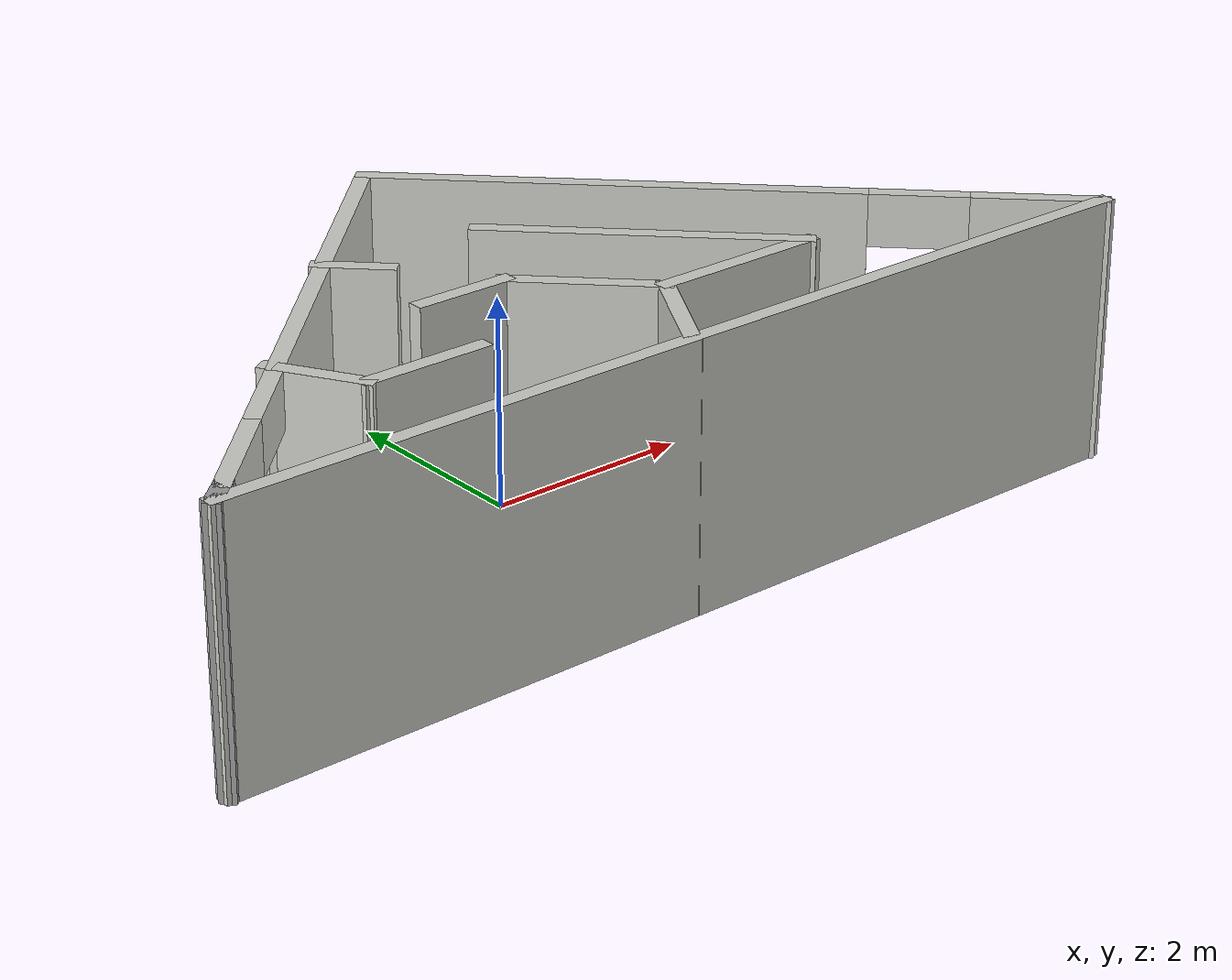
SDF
<?xml version='1.0'?>
<sdf version='1.7'>
  <model name='maze'>
    <pose>0.09983 -0.245914 0 0 -0 0</pose>
    <link name='Wall_11'>
      <collision name='Wall_11_Collision'>
        <geometry>
          <box>
            <size>1 0.15 2.5</size>
          </box>
        </geometry>
        <pose>0 0 1.25 0 -0 0</pose>
      </collision>
      <visual name='Wall_11_Visual'>
        <pose>0 0 1.25 0 -0 0</pose>
        <geometry>
          <box>
            <size>1 0.15 2.5</size>
          </box>
        </geometry>
        <material>
          <script>
            <uri>file://media/materials/scripts/gazebo.material</uri>
            <name>Gazebo/CeilingTiled</name>
          </script>
          <ambient>1 1 1 1</ambient>
        </material>
        <meta>
          <layer>0</layer>
        </meta>
      </visual>
      <pose>-2.83201 -0.996588 0 0 -0 -1.0472</pose>
    </link>
    <link name='Wall_12'>
      <collision name='Wall_12_Collision'>
        <geometry>
          <box>
            <size>1.25 0.15 2.5</size>
          </box>
        </geometry>
        <pose>0 0 1.25 0 -0 0</pose>
      </collision>
      <visual name='Wall_12_Visual'>
        <pose>0 0 1.25 0 -0 0</pose>
        <geometry>
          <box>
            <size>1.25 0.15 2.5</size>
          </box>
        </geometry>
        <material>
          <script>
            <uri>file://media/materials/scripts/gazebo.material</uri>
            <name>Gazebo/CeilingTiled</name>
          </script>
          <ambient>1 1 1 1</ambient>
        </material>
        <meta>
          <layer>0</layer>
        </meta>
      </visual>
      <pose>-2.06951 -1.36465 0 0 -0 0</pose>
    </link>
    <link name='Wall_15'>
      <collision name='Wall_15_Collision'>
        <geometry>
          <box>
            <size>1.25 0.15 2.5</size>
          </box>
        </geometry>
        <pose>0 0 1.25 0 -0 0</pose>
      </collision>
      <visual name='Wall_15_Visual'>
        <pose>0 0 1.25 0 -0 0</pose>
        <geometry>
          <box>
            <size>1.25 0.15 2.5</size>
          </box>
        </geometry>
        <material>
          <script>
            <uri>file://media/materials/scripts/gazebo.material</uri>
            <name>Gazebo/CeilingTiled</name>
          </script>
          <ambient>1 1 1 1</ambient>
        </material>
        <meta>
          <layer>0</layer>
        </meta>
      </visual>
      <pose>0.153219 -1.83179 0 0 -0 1.0472</pose>
    </link>
    <link name='Wall_17'>
      <collision name='Wall_17_Collision'>
        <geometry>
          <box>
            <size>1.5 0.15 2.5</size>
          </box>
        </geometry>
        <pose>0 0 1.25 0 -0 0</pose>
      </collision>
      <visual name='Wall_17_Visual'>
        <pose>0 0 1.25 0 -0 0</pose>
        <geometry>
          <box>
            <size>1.5 0.15 2.5</size>
          </box>
        </geometry>
        <material>
          <script>
            <uri>file://media/materials/scripts/gazebo.material</uri>
            <name>Gazebo/CeilingTiled</name>
          </script>
          <ambient>1 1 1 1</ambient>
        </material>
        <meta>
          <layer>0</layer>
        </meta>
      </visual>
      <pose>-0.049078 -0.878177 0 0 -0 2.35619</pose>
    </link>
    <link name='Wall_18'>
      <collision name='Wall_18_Collision'>
        <geometry>
          <box>
            <size>1 0.15 2.5</size>
          </box>
        </geometry>
        <pose>0 0 1.25 0 -0 0</pose>
      </collision>
      <visual name='Wall_18_Visual'>
        <pose>0 0 1.25 0 -0 0</pose>
        <geometry>
          <box>
            <size>1 0.15 2.5</size>
          </box>
        </geometry>
        <material>
          <script>
            <uri>file://media/materials/scripts/gazebo.material</uri>
            <name>Gazebo/CeilingTiled</name>
          </script>
          <ambient>1 1 1 1</ambient>
        </material>
        <meta>
          <layer>0</layer>
        </meta>
      </visual>
      <pose>-0.951375 -0.40088 0 0 -0 3.14159</pose>
    </link>
    <link name='Wall_20'>
      <collision name='Wall_20_Collision'>
        <geometry>
          <box>
            <size>0.75 0.15 2.5</size>
          </box>
        </geometry>
        <pose>0 0 1.25 0 -0 0</pose>
      </collision>
      <visual name='Wall_20_Visual'>
        <pose>0 0 1.25 0 -0 0</pose>
        <geometry>
          <box>
            <size>0.75 0.15 2.5</size>
          </box>
        </geometry>
        <material>
          <script>
            <uri>file://media/materials/scripts/gazebo.material</uri>
            <name>Gazebo/CeilingTiled</name>
          </script>
          <ambient>1 1 1 1</ambient>
        </material>
        <meta>
          <layer>0</layer>
        </meta>
      </visual>
      <pose>-1.32472 0.627316 0 0 -0 -0.785398</pose>
    </link>
    <link name='Wall_22'>
      <collision name='Wall_22_Collision'>
        <geometry>
          <box>
            <size>1.75 0.15 2.5</size>
          </box>
        </geometry>
        <pose>0 0 1.25 0 -0 0</pose>
      </collision>
      <visual name='Wall_22_Visual'>
        <pose>0 0 1.25 0 -0 0</pose>
        <geometry>
          <box>
            <size>1.75 0.15 2.5</size>
          </box>
        </geometry>
        <material>
          <script>
            <uri>file://media/materials/scripts/gazebo.material</uri>
            <name>Gazebo/CeilingTiled</name>
          </script>
          <ambient>1 1 1 1</ambient>
        </material>
        <meta>
          <layer>0</layer>
        </meta>
      </visual>
      <pose>1.22822 -1.35547 0 0 -0 0</pose>
    </link>
    <link name='Wall_24'>
      <collision name='Wall_24_Collision'>
        <geometry>
          <box>
            <size>3 0.15 2.5</size>
          </box>
        </geometry>
        <pose>0 0 1.25 0 -0 0</pose>
      </collision>
      <visual name='Wall_24_Visual'>
        <pose>0 0 1.25 0 -0 0</pose>
        <geometry>
          <box>
            <size>3 0.15 2.5</size>
          </box>
        </geometry>
        <material>
          <script>
            <uri>file://media/materials/scripts/gazebo.material</uri>
            <name>Gazebo/CeilingTiled</name>
          </script>
          <ambient>1 1 1 1</ambient>
        </material>
        <meta>
          <layer>0</layer>
        </meta>
      </visual>
      <pose>1.02059 -0.347847 0 0 -0 2.35619</pose>
    </link>
    <link name='Wall_5'>
      <pose>-2.23702 0.088388 0 0 -0 0.785398</pose>
      <visual name='Wall_5_Visual_0'>
        <pose>-2.66015 0 1.25 0 -0 0</pose>
        <geometry>
          <box>
            <size>1.1797 0.15 2.5</size>
          </box>
        </geometry>
        <material>
          <script>
            <uri>file://media/materials/scripts/gazebo.material</uri>
            <name>Gazebo/CeilingTiled</name>
          </script>
          <ambient>1 1 1 1</ambient>
        </material>
        <meta>
          <layer>0</layer>
        </meta>
      </visual>
      <collision name='Wall_5_Collision_0'>
        <geometry>
          <box>
            <size>1.1797 0.15 2.5</size>
          </box>
        </geometry>
        <pose>-2.66015 0 1.25 0 -0 0</pose>
      </collision>
      <visual name='Wall_5_Visual_1'>
        <pose>1.03985 0 1.25 0 -0 0</pose>
        <geometry>
          <box>
            <size>4.4203 0.15 2.5</size>
          </box>
        </geometry>
        <material>
          <script>
            <uri>file://media/materials/scripts/gazebo.material</uri>
            <name>Gazebo/CeilingTiled</name>
          </script>
          <ambient>1 1 1 1</ambient>
        </material>
        <meta>
          <layer>0</layer>
        </meta>
      </visual>
      <collision name='Wall_5_Collision_1'>
        <geometry>
          <box>
            <size>4.4203 0.15 2.5</size>
          </box>
        </geometry>
        <pose>1.03985 0 1.25 0 -0 0</pose>
      </collision>
      <visual name='Wall_5_Visual_2'>
        <pose>-1.6203 0 2.25 0 -0 0</pose>
        <geometry>
          <box>
            <size>0.9 0.15 0.5</size>
          </box>
        </geometry>
        <material>
          <script>
            <uri>file://media/materials/scripts/gazebo.material</uri>
            <name>Gazebo/CeilingTiled</name>
          </script>
          <ambient>1 1 1 1</ambient>
        </material>
        <meta>
          <layer>0</layer>
        </meta>
      </visual>
      <collision name='Wall_5_Collision_2'>
        <geometry>
          <box>
            <size>0.9 0.15 0.5</size>
          </box>
        </geometry>
        <pose>-1.6203 0 2.25 0 -0 0</pose>
      </collision>
    </link>
    <link name='Wall_7'>
      <pose>2.3415 -0 0 0 -0 -0.785398</pose>
      <visual name='Wall_7_Visual_0'>
        <pose>-1.06962 0 1.25 0 -0 0</pose>
        <geometry>
          <box>
            <size>4.61076 0.15 2.5</size>
          </box>
        </geometry>
        <material>
          <script>
            <uri>file://media/materials/scripts/gazebo.material</uri>
            <name>Gazebo/CeilingTiled</name>
          </script>
          <ambient>1 1 1 1</ambient>
        </material>
        <meta>
          <layer>0</layer>
        </meta>
      </visual>
      <collision name='Wall_7_Collision_0'>
        <geometry>
          <box>
            <size>4.61076 0.15 2.5</size>
          </box>
        </geometry>
        <pose>-1.06962 0 1.25 0 -0 0</pose>
      </collision>
      <visual name='Wall_7_Visual_1'>
        <pose>2.75538 0 1.25 0 -0 0</pose>
        <geometry>
          <box>
            <size>1.23924 0.15 2.5</size>
          </box>
        </geometry>
        <material>
          <script>
            <uri>file://media/materials/scripts/gazebo.material</uri>
            <name>Gazebo/CeilingTiled</name>
          </script>
          <ambient>1 1 1 1</ambient>
        </material>
        <meta>
          <layer>0</layer>
        </meta>
      </visual>
      <collision name='Wall_7_Collision_1'>
        <geometry>
          <box>
            <size>1.23924 0.15 2.5</size>
          </box>
        </geometry>
        <pose>2.75538 0 1.25 0 -0 0</pose>
      </collision>
      <visual name='Wall_7_Visual_2'>
        <pose>1.68576 0 2.25 0 -0 0</pose>
        <geometry>
          <box>
            <size>0.9 0.15 0.5</size>
          </box>
        </geometry>
        <material>
          <script>
            <uri>file://media/materials/scripts/gazebo.material</uri>
            <name>Gazebo/CeilingTiled</name>
          </script>
          <ambient>1 1 1 1</ambient>
        </material>
        <meta>
          <layer>0</layer>
        </meta>
      </visual>
      <collision name='Wall_7_Collision_2'>
        <geometry>
          <box>
            <size>0.9 0.15 0.5</size>
          </box>
        </geometry>
        <pose>1.68576 0 2.25 0 -0 0</pose>
      </collision>
    </link>
    <link name='Wall_8'>
      <collision name='Wall_8_Collision'>
        <geometry>
          <box>
            <size>9.5 0.15 2.5</size>
          </box>
        </geometry>
        <pose>0 0 1.25 0 -0 0</pose>
      </collision>
      <visual name='Wall_8_Visual'>
        <pose>0 0 1.25 0 -0 0</pose>
        <geometry>
          <box>
            <size>9.5 0.15 2.5</size>
          </box>
        </geometry>
        <material>
          <script>
            <uri>file://media/materials/scripts/gazebo.material</uri>
            <name>Gazebo/CeilingTiled</name>
          </script>
          <ambient>1 1 1 1</ambient>
        </material>
        <meta>
          <layer>0</layer>
        </meta>
      </visual>
      <pose>-5.1e-05 -2.33345 0 0 -0 3.14159</pose>
    </link>
    <link name='Wall_9'>
      <collision name='Wall_9_Collision'>
        <geometry>
          <box>
            <size>0.411699 0.15 2.5</size>
          </box>
        </geometry>
        <pose>0 0 1.25 0 -0 0</pose>
      </collision>
      <visual name='Wall_9_Visual'>
        <pose>0 0 1.25 0 -0 0</pose>
        <geometry>
          <box>
            <size>0.411699 0.15 2.5</size>
          </box>
        </geometry>
        <material>
          <script>
            <uri>file://media/materials/scripts/gazebo.material</uri>
            <name>Gazebo/Grey</name>
          </script>
          <ambient>1 1 1 1</ambient>
        </material>
        <meta>
          <layer>0</layer>
        </meta>
      </visual>
      <pose>-4.57857 -2.24506 0 0 -0 0.741638</pose>
    </link>
    <static>1</static>
  </model>
</sdf>
